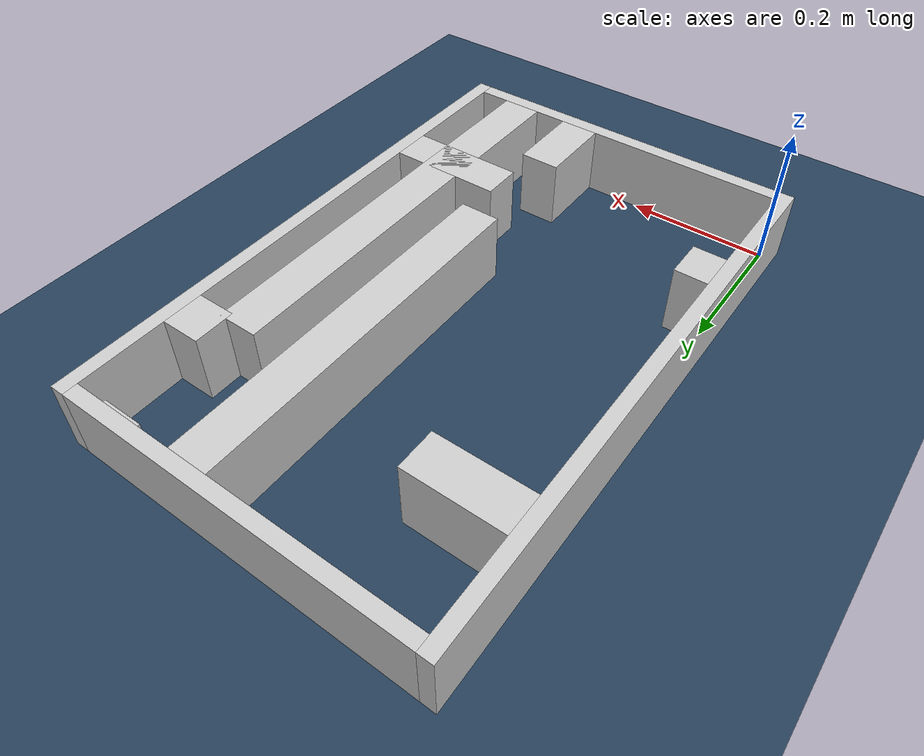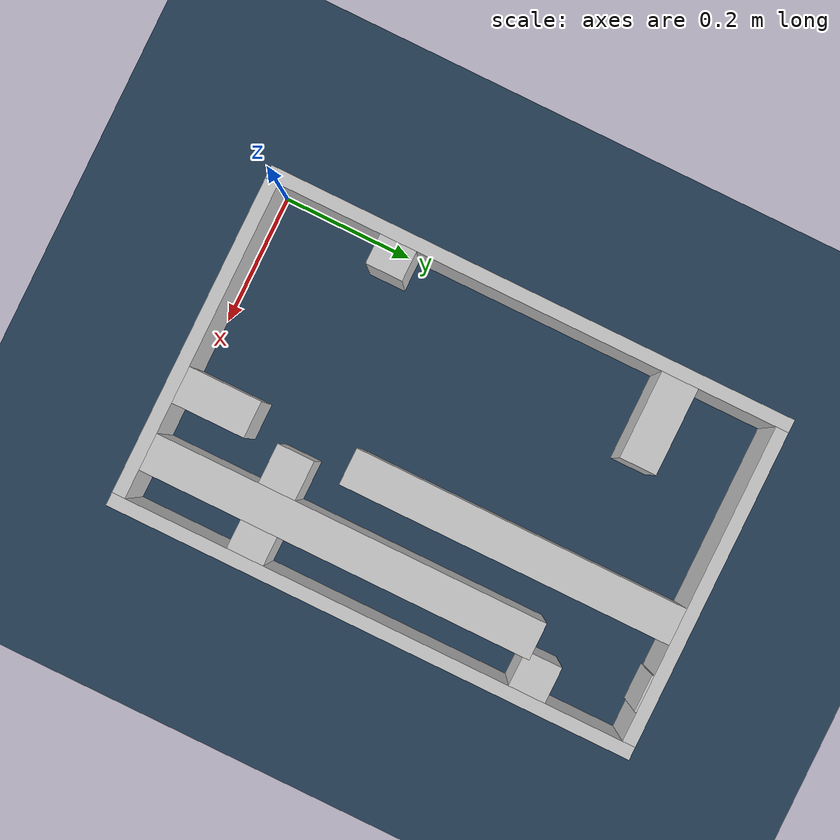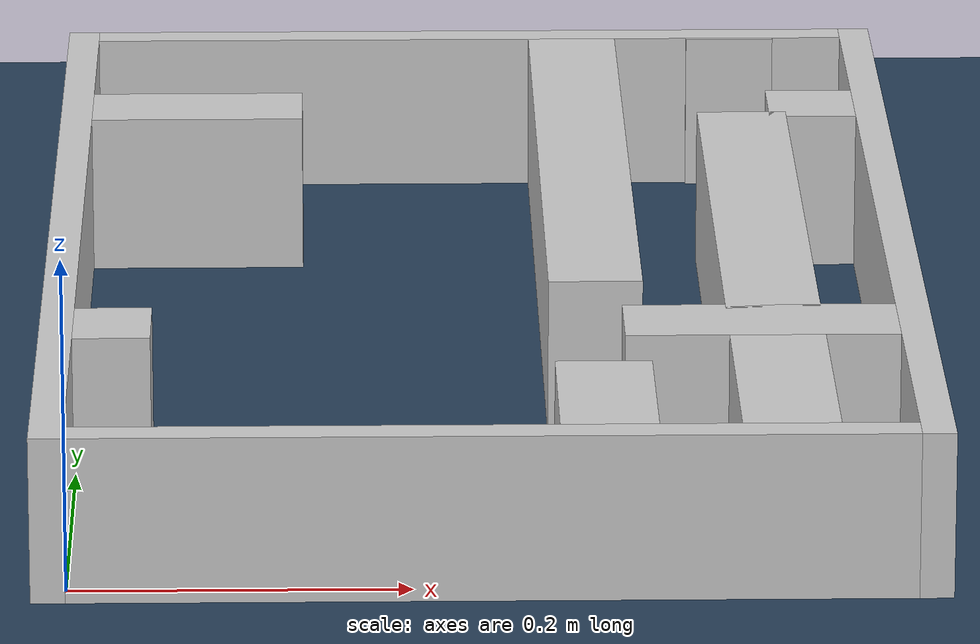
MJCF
<?xml version="1.0" ?>
<mujoco model="generated_real_template">
  <compiler angle="degree"/>
  <option timestep="0.002" integrator="implicitfast" iterations="100" cone="elliptic"/>
  <default>
    <geom density="1"/>
  </default>
  <asset>
    <texture builtin="gradient" height="3072" rgb1="0.3 0.5 0.7" rgb2="0 0 0" type="skybox" width="512"/>
    <texture builtin="checker" height="300" mark="edge" markrgb="0.8 0.8 0.8" name="groundplane" rgb1="0.2 0.3 0.4" rgb2="0.1 0.2 0.3" type="2d" width="300"/>
    <material name="groundplane" reflectance="0.2" texrepeat="5 5" texture="groundplane" texuniform="true"/>
  </asset>
  <worldbody>
    <light dir="0 0 -1" directional="true" pos="0 0 1.5"/>
    <geom name="floor" type="plane" condim="4" friction="0.5 0.005 0.001" material="groundplane" size="0 0 0.05"/>
    <body name="walls">
      <geom name="wall_boundary_left" type="box" condim="4" friction="1.0 0.005 0.0001" rgba="0.8 0.8 0.8 1" pos="-0.010000 0.387500 0.050000" euler="0 0 0.000000" size="0.010000 0.407500 0.050000"/>
      <geom name="wall_boundary_right" type="box" condim="4" friction="1.0 0.005 0.0001" rgba="0.8 0.8 0.8 1" pos="0.500000 0.387500 0.050000" euler="0 0 0.000000" size="0.010000 0.407500 0.050000"/>
      <geom name="wall_boundary_bottom" type="box" condim="4" friction="1.0 0.005 0.0001" rgba="0.8 0.8 0.8 1" pos="0.245000 -0.010000 0.050000" euler="0 0 0.000000" size="0.245000 0.010000 0.050000"/>
      <geom name="wall_boundary_top" type="box" condim="4" friction="1.0 0.005 0.0001" rgba="0.8 0.8 0.8 1" pos="0.245000 0.785000 0.050000" euler="0 0 0.000000" size="0.245000 0.010000 0.050000"/>
      <geom name="wall_inner_1_1" type="box" condim="4" friction="1.0 0.005 0.0001" rgba="0.8 0.8 0.8 1" pos="0.416810 0.304020 0.050000" euler="0 0 90.000000" size="0.304020 0.028500 0.050000"/>
      <geom name="wall_inner_1_2" type="box" condim="4" friction="1.0 0.005 0.0001" rgba="0.8 0.8 0.8 1" pos="0.416810 0.773365 0.050000" euler="0 0 90.000000" size="0.001635 0.028500 0.050000"/>
      <geom name="wall_inner_2_1" type="box" condim="4" friction="1.0 0.005 0.0001" rgba="0.8 0.8 0.8 1" pos="0.023146 0.186933 0.050000" euler="0 0 0.000000" size="0.023146 0.028500 0.050000"/>
      <geom name="wall_inner_2_2" type="box" condim="4" friction="1.0 0.005 0.0001" rgba="0.8 0.8 0.8 1" pos="0.408351 0.186933 0.050000" euler="0 0 0.000000" size="0.081649 0.028500 0.050000"/>
      <geom name="wall_inner_3_1" type="box" condim="4" friction="1.0 0.005 0.0001" rgba="0.8 0.8 0.8 1" pos="0.312374 0.056150 0.050000" euler="0 0 90.000000" size="0.056150 0.028500 0.050000"/>
      <geom name="wall_inner_3_2" type="box" condim="4" friction="1.0 0.005 0.0001" rgba="0.8 0.8 0.8 1" pos="0.312374 0.517910 0.050000" euler="0 0 90.000000" size="0.257090 0.028500 0.050000"/>
      <geom name="wall_inner_4_1" type="box" condim="4" friction="1.0 0.005 0.0001" rgba="0.8 0.8 0.8 1" pos="0.067369 0.625984 0.050000" euler="0 0 0.000000" size="0.067369 0.028500 0.050000"/>
      <geom name="wall_inner_4_2" type="box" condim="4" friction="1.0 0.005 0.0001" rgba="0.8 0.8 0.8 1" pos="0.462301 0.625984 0.050000" euler="0 0 0.000000" size="0.027699 0.028500 0.050000"/>
    </body>
  </worldbody>
</mujoco>
